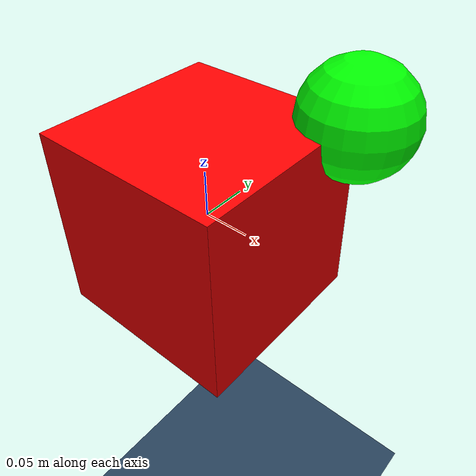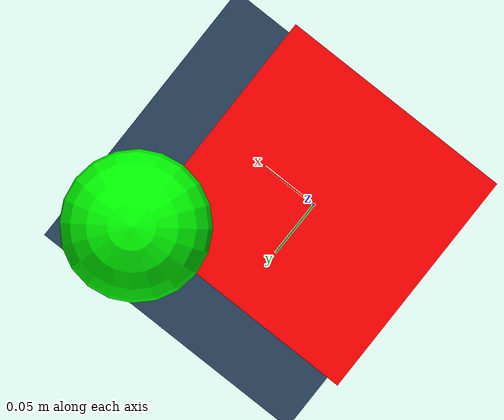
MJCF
<mujoco model="Box_Sphere_Contact">
    <asset>
        <texture name="grid" type="2d" builtin="checker" rgb1=".1 .2 .3"
            rgb2=".2 .3 .4" width="300" height="300" mark="edge" markrgb=".2 .3 .4"/>
        <material name="grid" texture="grid" texrepeat="2 2" texuniform="true" reflectance=".2"/>
    </asset>

    <worldbody>
        <light pos="0 0 1" mode="trackcom"/>
        <geom name="ground" type="plane" pos="0 0 -.5" size="2 2 .1" material="grid" solimp=".99 .99 .01" solref=".001 1"/>

        <body name="box_and_sphere" pos="0 0 0">
            <freejoint/>
            <geom name="red_box" type="box" size=".1 .1 .1" rgba="1 0 0 1" solimp=".99 .99 .01" solref=".001 1"/>
            <geom name="green_ball" type="sphere" size=".06" pos=".1 .1 .1" rgba="0 1 0 1" />
            <camera name="fixed" pos="0 -.6 .3" xyaxes=" 1 0 0 0 1 2"/>
            <camera name="track" pos="0 -.6 .3" xyaxes=" 1 0 0 0 1 2" mode="track"/>
        </body>
    </worldbody>
</mujoco>
